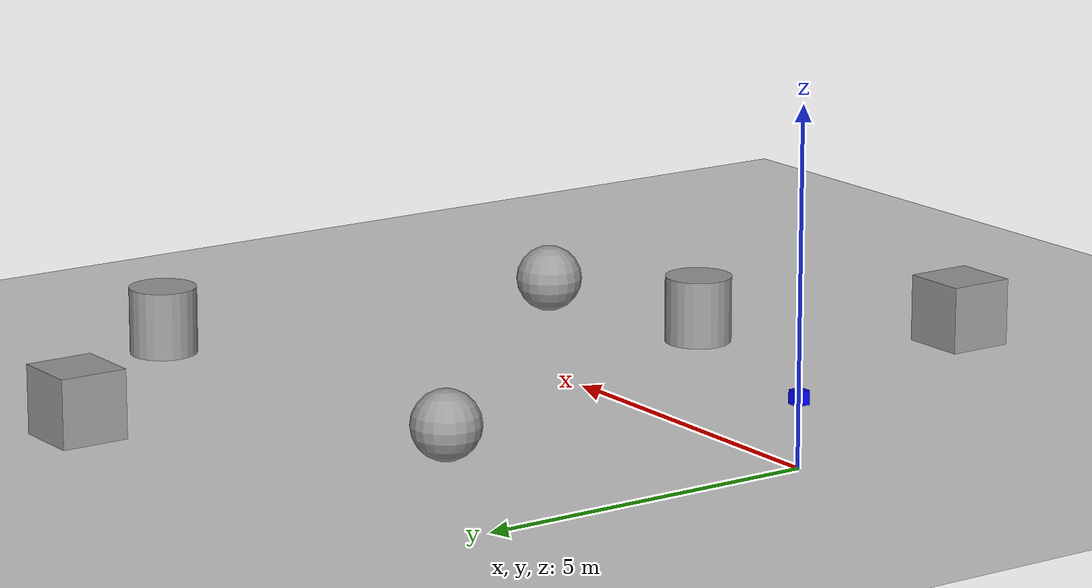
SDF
<sdf version='1.7'>
  <world name='default'>
    <scene>
      <sky>
        <ambient>0.5 0.7 1.0 1.0</ambient>
      </sky>
    </scene>
    <light name='sun' type='directional'>
      <cast_shadows>1</cast_shadows>
      <pose>0 0 10 0 -0 0</pose>
      <diffuse>0.8 0.8 0.8 1</diffuse>
      <specular>0.2 0.2 0.2 1</specular>
      <attenuation>
        <range>1000</range>
        <constant>0.9</constant>
        <linear>0.01</linear>
        <quadratic>0.001</quadratic>
      </attenuation>
      <direction>-0.5 0.1 -0.9</direction>
      <spot>
        <inner_angle>0</inner_angle>
        <outer_angle>0</outer_angle>
        <falloff>0</falloff>
      </spot>
    </light>
    <model name='ground_plane'>
      <static>1</static>
      <link name='link'>
        <collision name='collision'>
          <geometry>
            <plane>
              <normal>0 0 1</normal>
              <size>100 100</size>
            </plane>
          </geometry>
          <surface>
            <contact>
              <collide_bitmask>65535</collide_bitmask>
              <ode/>
            </contact>
            <friction>
              <ode>
                <mu>100</mu>
                <mu2>50</mu2>
              </ode>
              <torsional>
                <ode/>
              </torsional>
            </friction>
            <bounce/>
          </surface>
          <max_contacts>10</max_contacts>
        </collision>
        <visual name='visual'>
          <cast_shadows>0</cast_shadows>
          <geometry>
            <plane>
              <normal>0 0 1</normal>
              <size>100 100</size>
            </plane>
          </geometry>
          <material>
            <script>
              <uri>file://media/materials/scripts/gazebo.material</uri>
              <name>Gazebo/Grey</name>
            </script>
          </material>
        </visual>
        <self_collide>0</self_collide>
        <enable_wind>0</enable_wind>
        <kinematic>0</kinematic>
      </link>
    </model>
    <gravity>0 0 -9.8</gravity>
    <magnetic_field>6e-06 2.3e-05 -4.2e-05</magnetic_field>
    <atmosphere type='adiabatic'/>
    <physics type='ode'>
      <max_step_size>0.001</max_step_size>
      <real_time_factor>1</real_time_factor>
      <real_time_update_rate>1000</real_time_update_rate>
    </physics>
    <scene>
      <ambient>0.4 0.4 0.4 1</ambient>
      <background>0.7 0.7 0.7 1</background>
      <shadows>1</shadows>
    </scene>
    <wind/>
    <spherical_coordinates>
      <surface_model>EARTH_WGS84</surface_model>
      <latitude_deg>0</latitude_deg>
      <longitude_deg>0</longitude_deg>
      <elevation>0</elevation>
      <heading_deg>0</heading_deg>
    </spherical_coordinates>
    <model name='unit_sphere'>
      <pose>3.01659 3.66741 0.5 0 -0 0</pose>
      <link name='link'>
        <inertial>
          <mass>1</mass>
          <inertia>
            <ixx>0.001</ixx>
            <iyy>0.001</iyy>
            <izz>0.001</izz>
            <ixy>0.0</ixy>
            <ixz>0.0</ixz>
            <iyz>0.0</iyz>
          </inertia>
          <pose>0 0 0 0 -0 0</pose>
        </inertial>
        <collision name='collision'>
          <geometry>
            <sphere>
              <radius>0.5</radius>
            </sphere>
          </geometry>
          <max_contacts>10</max_contacts>
          <surface>
            <contact>
              <ode/>
            </contact>
            <bounce/>
            <friction>
              <torsional>
                <ode/>
              </torsional>
              <ode/>
            </friction>
          </surface>
        </collision>
        <visual name='visual'>
          <geometry>
            <sphere>
              <radius>0.5</radius>
            </sphere>
          </geometry>
          <material>
            <script>
              <name>Gazebo/Grey</name>
              <uri>file://media/materials/scripts/gazebo.material</uri>
            </script>
          </material>
        </visual>
        <self_collide>0</self_collide>
        <enable_wind>0</enable_wind>
        <kinematic>0</kinematic>
      </link>
    </model>
    <model name='unit_box'>
      <pose>3.7705 -6.0 0.5 0 -0 0</pose>
      <link name='link'>
        <inertial>
          <mass>1</mass>
          <inertia>
            <ixx>0.166667</ixx>
            <ixy>0</ixy>
            <ixz>0</ixz>
            <iyy>0.166667</iyy>
            <iyz>0</iyz>
            <izz>0.166667</izz>
          </inertia>
          <pose>0 0 0 0 -0 0</pose>
        </inertial>
        <collision name='collision'>
          <geometry>
            <box>
              <size>1 1 1</size>
            </box>
          </geometry>
          <max_contacts>10</max_contacts>
          <surface>
            <contact>
              <ode/>
            </contact>
            <bounce/>
            <friction>
              <torsional>
                <ode/>
              </torsional>
              <ode/>
            </friction>
          </surface>
        </collision>
        <visual name='visual'>
          <geometry>
            <box>
              <size>1 1 1</size>
            </box>
          </geometry>
          <material>
            <script>
              <name>Gazebo/Grey</name>
              <uri>file://media/materials/scripts/gazebo.material</uri>
            </script>
          </material>
        </visual>
        <self_collide>0</self_collide>
        <enable_wind>0</enable_wind>
        <kinematic>0</kinematic>
      </link>
    </model>
    <model name='unit_cylinder'>
      <pose>6.05207 -2.85998 0.5 0 -0 0</pose>
      <link name='link'>
        <inertial>
          <mass>1</mass>
          <inertia>
            <ixx>0.145833</ixx>
            <ixy>0</ixy>
            <ixz>0</ixz>
            <iyy>0.145833</iyy>
            <iyz>0</iyz>
            <izz>0.125</izz>
          </inertia>
          <pose>0 0 0 0 -0 0</pose>
        </inertial>
        <collision name='collision'>
          <geometry>
            <cylinder>
              <radius>0.5</radius>
              <length>1</length>
            </cylinder>
          </geometry>
          <max_contacts>10</max_contacts>
          <surface>
            <contact>
              <ode/>
            </contact>
            <bounce/>
            <friction>
              <torsional>
                <ode/>
              </torsional>
              <ode/>
            </friction>
          </surface>
        </collision>
        <visual name='visual'>
          <geometry>
            <cylinder>
              <radius>0.5</radius>
              <length>1</length>
            </cylinder>
          </geometry>
          <material>
            <script>
              <name>Gazebo/Grey</name>
              <uri>file://media/materials/scripts/gazebo.material</uri>
            </script>
          </material>
        </visual>
        <self_collide>0</self_collide>
        <enable_wind>0</enable_wind>
        <kinematic>0</kinematic>
      </link>
    </model>
    <model name='unit_sphere_0'>
      <pose>8.81389 -2.08254 0.5 0 -0 0</pose>
      <link name='link'>
        <inertial>
          <mass>1</mass>
          <inertia>
            <ixx>0.1</ixx>
            <ixy>0</ixy>
            <ixz>0</ixz>
            <iyy>0.1</iyy>
            <iyz>0</iyz>
            <izz>0.1</izz>
          </inertia>
          <pose>0 0 0 0 -0 0</pose>
        </inertial>
        <collision name='collision'>
          <geometry>
            <sphere>
              <radius>0.5</radius>
            </sphere>
          </geometry>
          <max_contacts>10</max_contacts>
          <surface>
            <contact>
              <ode/>
            </contact>
            <bounce/>
            <friction>
              <torsional>
                <ode/>
              </torsional>
              <ode/>
            </friction>
          </surface>
        </collision>
        <visual name='visual'>
          <geometry>
            <sphere>
              <radius>0.5</radius>
            </sphere>
          </geometry>
          <material>
            <script>
              <name>Gazebo/Grey</name>
              <uri>file://media/materials/scripts/gazebo.material</uri>
            </script>
          </material>
        </visual>
        <self_collide>0</self_collide>
        <enable_wind>0</enable_wind>
        <kinematic>0</kinematic>
      </link>
    </model>
    <model name='unit_box_0'>
      <pose>6.87648 7.2 0.5 0 -0 0</pose>
      <link name='link'>
        <inertial>
          <mass>1</mass>
          <inertia>
            <ixx>0.166667</ixx>
            <ixy>0</ixy>
            <ixz>0</ixz>
            <iyy>0.166667</iyy>
            <iyz>0</iyz>
            <izz>0.166667</izz>
          </inertia>
          <pose>0 0 0 0 -0 0</pose>
        </inertial>
        <collision name='collision'>
          <geometry>
            <box>
              <size>1 1 1</size>
            </box>
          </geometry>
          <max_contacts>10</max_contacts>
          <surface>
            <contact>
              <ode/>
            </contact>
            <bounce/>
            <friction>
              <torsional>
                <ode/>
              </torsional>
              <ode/>
            </friction>
          </surface>
        </collision>
        <visual name='visual'>
          <geometry>
            <box>
              <size>1 1 1</size>
            </box>
          </geometry>
          <material>
            <script>
              <name>Gazebo/Grey</name>
              <uri>file://media/materials/scripts/gazebo.material</uri>
            </script>
          </material>
        </visual>
        <self_collide>0</self_collide>
        <enable_wind>0</enable_wind>
        <kinematic>0</kinematic>
      </link>
    </model>
    <model name='unit_cylinder_0'>
      <pose>10.0302 4.00978 0.5 0 -0 0</pose>
      <link name='link'>
        <inertial>
          <mass>1</mass>
          <inertia>
            <ixx>0.145833</ixx>
            <ixy>0</ixy>
            <ixz>0</ixz>
            <iyy>0.145833</iyy>
            <iyz>0</iyz>
            <izz>0.125</izz>
          </inertia>
          <pose>0 0 0 0 -0 0</pose>
        </inertial>
        <collision name='collision'>
          <geometry>
            <cylinder>
              <radius>0.5</radius>
              <length>1</length>
            </cylinder>
          </geometry>
          <max_contacts>10</max_contacts>
          <surface>
            <contact>
              <ode/>
            </contact>
            <bounce/>
            <friction>
              <torsional>
                <ode/>
              </torsional>
              <ode/>
            </friction>
          </surface>
        </collision>
        <visual name='visual'>
          <geometry>
            <cylinder>
              <radius>0.5</radius>
              <length>1</length>
            </cylinder>
          </geometry>
          <material>
            <script>
              <name>Gazebo/Grey</name>
              <uri>file://media/materials/scripts/gazebo.material</uri>
            </script>
          </material>
        </visual>
        <self_collide>0</self_collide>
        <enable_wind>0</enable_wind>
        <kinematic>0</kinematic>
      </link>
    </model>
    <gui fullscreen='0'>
      <camera name='user_camera'>
        <pose>16.2105 -9.49121 5.05092 0 0.275643 2.35619</pose>
        <view_controller>orbit</view_controller>
        <projection_type>perspective</projection_type>
      </camera>
    </gui>
    <!-- 3) The “vehicle” is still a 0.2×0.2×0.2 blue box,
          but now it carries a DVS sensor on its front. -->
    <model name="camera_model">
      <static>false</static>
      <!-- Keep the box’s center at z=1.0 m so it drives between the two white lanes -->
      <pose>0 0 1.0 0 0 0</pose>

      <link name="link">
        <pose>0 0 0 0 0 0</pose>

        <!-- collision block (same size as visual) -->
        <collision name="collision">
          <geometry>
            <box>
              <size>0.2 0.2 0.2</size>
            </box>
          </geometry>
        </collision>

        <!-- Visualize the blue box -->
        <visual name="vis">
          <geometry>
            <box>
              <size>0.2 0.2 0.2</size>
            </box>
          </geometry>
          <material>
            <ambient>0 0 1 1</ambient>
            <diffuse>0 0 1 1</diffuse>
          </material>
        </visual>

        <plugin name="ackermann_steering" filename="libgazebo_ros_ackermann_drive.so">
          <ros>
            <namespace>/lane_demo</namespace>
            <remapping>cmd:=ackermann_cmd</remapping>
          </ros>

          <!-- Example plugin parameters -->
          <wheelbase>0.4</wheelbase>
          <front_left_wheel>front_left_wheel_joint</front_left_wheel>
          <front_right_wheel>front_right_wheel_joint</front_right_wheel>
          <rear_left_wheel>rear_left_wheel_joint</rear_left_wheel>
          <rear_right_wheel>rear_right_wheel_joint</rear_right_wheel>
          <steering_left_joint>front_left_steering_joint</steering_left_joint>
          <steering_right_joint>front_right_steering_joint</steering_right_joint>
        </plugin>

        <sensor name="dvs_cam" type="camera">
          <!-- place it 0.1 m above the box center (i.e. at z=1.1 m) -->
          <pose>0 0 0.5 0 0 0</pose>

          <!-- The “camera” sub‐element defines the virtual image plane size -->
          <camera name="__default__">
            <horizontal_fov>1.047</horizontal_fov>
            <image>
              <width>128</width>
              <height>128</height>
              <format>R8G8B8</format>
            </image>
            <clip>
              <near>0.01</near>
              <far>100</far>
            </clip>
          </camera>

          <!-- We set this to 0 if you don’t want the normal image published -->
          <visualize>0</visualize>

          <!-- The plugin tag below is exactly from the gazebo_dvs_plugin README: -->
          <!-- :contentReference[oaicite:1]{index=1} -->
          <plugin name="dvs_plugin" filename="libgazebo_dvs_plugin.so">
            <!-- cameraName and robotNamespace determine the ROS topic: -->
            <cameraName>front_cam</cameraName>
            <robotNamespace>lane_demo</robotNamespace>

            <!-- Pixel‐wise threshold (change to tune sensitivity) -->
            <eventThreshold>1</eventThreshold>

            <!-- Topic on which camera_info is published (optional) -->
            <cameraInfoTopicName>camera_info</cameraInfoTopicName>

          </plugin>
        </sensor>
        <plugin name="drive_plugin" filename="libgazebo_ros_planar_move.so">
          <ros>
            <namespace>/lane_demo</namespace>
            <remapping>cmd_vel:=cmd_vel</remapping>
          </ros>
          <bodyName>link</bodyName>
          <topicName>cmd_vel</topicName>
          <odometryTopicName>odom</odometryTopicName>
          <updateRate>100.0</updateRate>
          <linearSpeedGain>1.0</linearSpeedGain>
          <angularSpeedGain>4.0</angularSpeedGain>
        </plugin>
        <sensor name="rgb_camera" type="camera">
          <!-- place it 0.1 m above the box center (i.e. at z=1.1 m) -->
          <pose>0 0 0.5 0 0 0</pose>
          <always_on>true</always_on>
          <update_rate>30.0</update_rate>
          <visualize>true</visualize>
          <camera>
            <horizontal_fov>1.047</horizontal_fov>
            <image>
              <width>640</width>
              <height>480</height>
              <format>R8G8B8</format>
            </image>
            <clip>
              <near>0.01</near>
              <far>100</far>
            </clip>
          </camera>
          <plugin name="camera_controller" filename="libgazebo_ros_camera.so">
            <robotNamespace>/camera</robotNamespace>
            <cameraName>rgb_camera</cameraName>
            <imageTopicName>rgb/image_raw</imageTopicName>
            <cameraInfoTopicName>rgb/camera_info</cameraInfoTopicName>
            <frameName>camera_link</frameName>
          </plugin>
        </sensor>
      </link>
    </model>
  </world>
</sdf>
